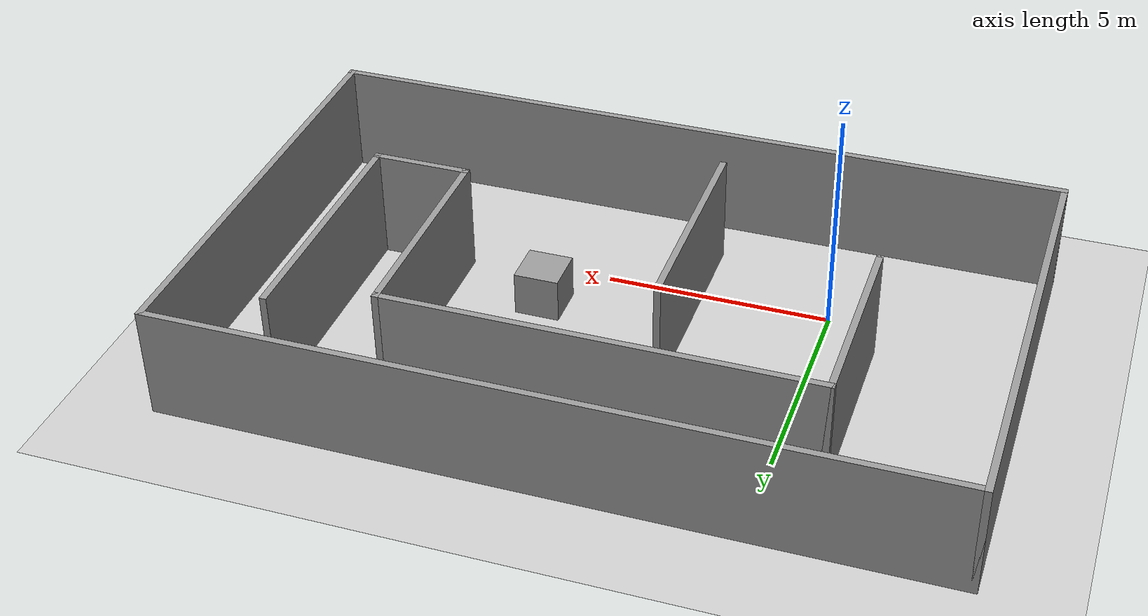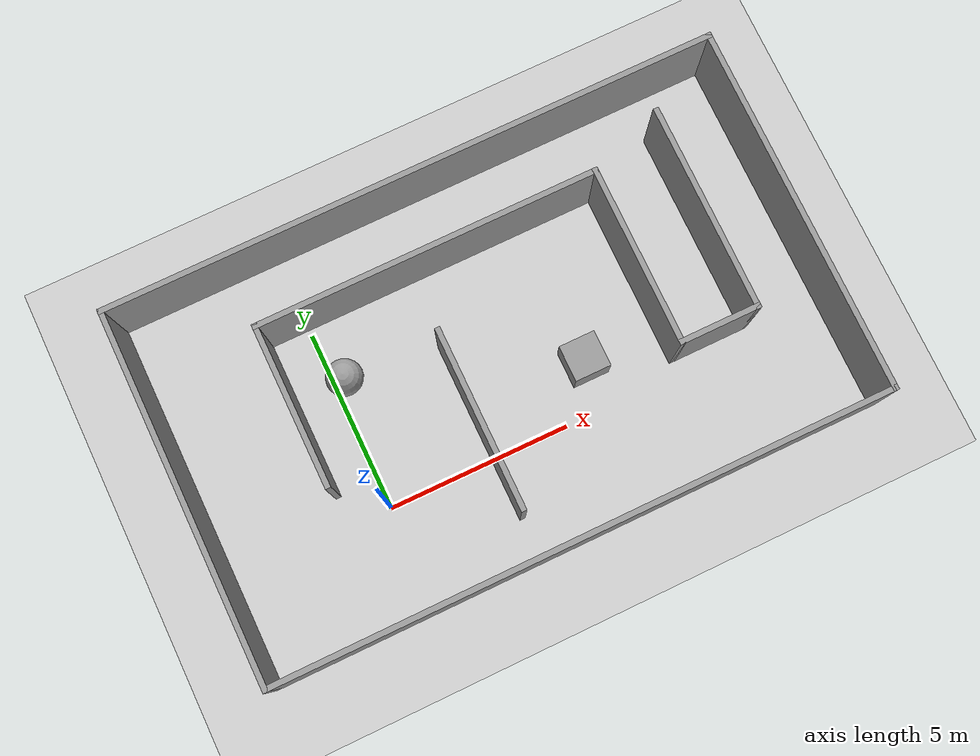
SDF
<sdf version="1.7">
 <world name="default">
  <light name="sun" type="directional">
   <pose>0 0 10 0 -0 0</pose>
   <diffuse>0.8 0.8 0.8 1</diffuse>
   <specular>0.2 0.2 0.2 1</specular>
   <attenuation>
    <range>1000</range>
    <constant>0.9</constant>
    <linear>0.01</linear>
    <quadratic>0.001</quadratic>
   </attenuation>
   <direction>-0.5 0.1 -0.9</direction>
   <spot><inner_angle>0</inner_angle><outer_angle>0</outer_angle><falloff>0</falloff></spot>
  </light>
  <model name="ground_plane">
   <static>1</static>
   <link name="link">
    <collision name="collision">
     <geometry><plane><normal>0 0 1</normal><size>100 100</size></plane></geometry>
     <surface>
      <contact><collide_bitmask>65535</collide_bitmask></contact>
      <friction><ode><mu>100</mu><mu2>50</mu2></ode></friction>
     </surface>
    </collision>
    <visual name="visual">
     <cast_shadows>0</cast_shadows>
     <geometry><plane><normal>0 0 1</normal><size>100 100</size></plane></geometry>
     <material>
      <script><uri>file://media/materials/scripts/gazebo.material</uri><name>Gazebo/Grey</name></script>
     </material>
    </visual>
   </link>
  </model>
  <gravity>0 0 -9.8</gravity>
  <magnetic_field>6e-06 2.3e-05 -4.2e-05</magnetic_field>
  <atmosphere type="adiabatic"/>
  <physics type="ode">
   <max_step_size>0.001</max_step_size>
   <real_time_factor>1</real_time_factor>
   <real_time_update_rate>1000</real_time_update_rate>
  </physics>
  <scene><ambient>0.4 0.4 0.4 1</ambient><background>0.7 0.7 0.7 1</background><shadows>1</shadows></scene>
  <audio><device>default</device></audio>
  <spherical_coordinates>
   <surface_model>EARTH_WGS84</surface_model>
   <latitude_deg>0</latitude_deg>
   <longitude_deg>0</longitude_deg>
   <elevation>0</elevation>
   <heading_deg>0</heading_deg>
  </spherical_coordinates>
  <model name="Untitled">
   <pose>4.005 2.19 0 0 -0 0</pose>
   <link name="Wall_0">
    <collision name="Wall_0_Collision">
     <geometry><box><size>10.25 0.15 2.5</size></box></geometry>
     <pose>0 0 1.25 0 -0 0</pose>
    </collision>
    <visual name="Wall_0_Visual">
     <pose>0 0 1.25 0 -0 0</pose>
     <geometry><box><size>10.25 0.15 2.5</size></box></geometry>
     <material>
      <script><uri>file://media/materials/scripts/gazebo.material</uri><name>Gazebo/Grey</name></script>
      <ambient>1 1 1 1</ambient>
     </material>
     <meta><layer>0</layer></meta>
    </visual>
    <pose>-8.425 0 0 0 -0 1.5708</pose>
   </link>
   <link name="Wall_1">
    <collision name="Wall_1_Collision">
     <geometry><box><size>17 0.15 2.5</size></box></geometry>
     <pose>0 0 1.25 0 -0 0</pose>
    </collision>
    <visual name="Wall_1_Visual">
     <pose>0 0 1.25 0 -0 0</pose>
     <geometry><box><size>17 0.15 2.5</size></box></geometry>
     <material>
      <script><uri>file://media/materials/scripts/gazebo.material</uri><name>Gazebo/Grey</name></script>
      <ambient>1 1 1 1</ambient>
     </material>
     <meta><layer>0</layer></meta>
    </visual>
    <pose>0 5.05 0 0 -0 0</pose>
   </link>
   <link name="Wall_10">
    <collision name="Wall_10_Collision">
     <geometry><box><size>5.75 0.15 2.5</size></box></geometry>
     <pose>0 0 1.25 0 -0 0</pose>
    </collision>
    <visual name="Wall_10_Visual">
     <pose>0 0 1.25 0 -0 0</pose>
     <geometry><box><size>5.75 0.15 2.5</size></box></geometry>
     <material>
      <script><uri>file://media/materials/scripts/gazebo.material</uri><name>Gazebo/Grey</name></script>
      <ambient>1 1 1 1</ambient>
     </material>
     <meta><layer>0</layer></meta>
    </visual>
    <pose>6.32232 1.01318 0 0 -0 1.5708</pose>
   </link>
   <link name="Wall_12">
    <collision name="Wall_12_Collision">
     <geometry><box><size>5 0.15 2.5</size></box></geometry>
     <pose>0 0 1.25 0 -0 0</pose>
    </collision>
    <visual name="Wall_12_Visual">
     <pose>0 0 1.25 0 -0 0</pose>
     <geometry><box><size>5 0.15 2.5</size></box></geometry>
     <material>
      <script><uri>file://media/materials/scripts/gazebo.material</uri><name>Gazebo/Grey</name></script>
      <ambient>1 1 1 1</ambient>
     </material>
     <meta><layer>0</layer></meta>
    </visual>
    <pose>-1.08212 -1.3846 0 0 -0 -1.5708</pose>
   </link>
   <link name="Wall_2">
    <collision name="Wall_2_Collision">
     <geometry><box><size>10.25 0.15 2.5</size></box></geometry>
     <pose>0 0 1.25 0 -0 0</pose>
    </collision>
    <visual name="Wall_2_Visual">
     <pose>0 0 1.25 0 -0 0</pose>
     <geometry><box><size>10.25 0.15 2.5</size></box></geometry>
     <material>
      <script><uri>file://media/materials/scripts/gazebo.material</uri><name>Gazebo/Grey</name></script>
      <ambient>1 1 1 1</ambient>
     </material>
     <meta><layer>0</layer></meta>
    </visual>
    <pose>8.425 0 0 0 -0 -1.5708</pose>
   </link>
   <link name="Wall_3">
    <collision name="Wall_3_Collision">
     <geometry><box><size>17 0.15 2.5</size></box></geometry>
     <pose>0 0 1.25 0 -0 0</pose>
    </collision>
    <visual name="Wall_3_Visual">
     <pose>0 0 1.25 0 -0 0</pose>
     <geometry><box><size>17 0.15 2.5</size></box></geometry>
     <material>
      <script><uri>file://media/materials/scripts/gazebo.material</uri><name>Gazebo/Grey</name></script>
      <ambient>1 1 1 1</ambient>
     </material>
     <meta><layer>0</layer></meta>
    </visual>
    <pose>0 -5.05 0 0 -0 3.14159</pose>
   </link>
   <link name="Wall_5">
    <collision name="Wall_5_Collision">
     <geometry><box><size>4.5 0.15 2.5</size></box></geometry>
     <pose>0 0 1.25 0 -0 0</pose>
    </collision>
    <visual name="Wall_5_Visual">
     <pose>0 0 1.25 0 -0 0</pose>
     <geometry><box><size>4.5 0.15 2.5</size></box></geometry>
     <material>
      <script><uri>file://media/materials/scripts/gazebo.material</uri><name>Gazebo/Grey</name></script>
      <ambient>1 1 1 1</ambient>
     </material>
     <meta><layer>0</layer></meta>
    </visual>
    <pose>-5.12768 0.88818 0 0 -0 -1.5708</pose>
   </link>
   <link name="Wall_7">
    <collision name="Wall_7_Collision">
     <geometry><box><size>9.5 0.15 2.5</size></box></geometry>
     <pose>0 0 1.25 0 -0 0</pose>
    </collision>
    <visual name="Wall_7_Visual">
     <pose>0 0 1.25 0 -0 0</pose>
     <geometry><box><size>9.5 0.15 2.5</size></box></geometry>
     <material>
      <script><uri>file://media/materials/scripts/gazebo.material</uri><name>Gazebo/Grey</name></script>
      <ambient>1 1 1 1</ambient>
     </material>
     <meta><layer>0</layer></meta>
    </visual>
    <pose>-0.452676 3.06318 0 0 -0 0</pose>
   </link>
   <link name="Wall_8">
    <collision name="Wall_8_Collision">
     <geometry><box><size>5 0.15 2.5</size></box></geometry>
     <pose>0 0 1.25 0 -0 0</pose>
    </collision>
    <visual name="Wall_8_Visual">
     <pose>0 0 1.25 0 -0 0</pose>
     <geometry><box><size>5 0.15 2.5</size></box></geometry>
     <material>
      <script><uri>file://media/materials/scripts/gazebo.material</uri><name>Gazebo/Grey</name></script>
      <ambient>1 1 1 1</ambient>
     </material>
     <meta><layer>0</layer></meta>
    </visual>
    <pose>4.22232 0.63818 0 0 -0 -1.5708</pose>
   </link>
   <link name="Wall_9">
    <collision name="Wall_9_Collision">
     <geometry><box><size>2.25 0.15 2.5</size></box></geometry>
     <pose>0 0 1.25 0 -0 0</pose>
    </collision>
    <visual name="Wall_9_Visual">
     <pose>0 0 1.25 0 -0 0</pose>
     <geometry><box><size>2.25 0.15 2.5</size></box></geometry>
     <material>
      <script><uri>file://media/materials/scripts/gazebo.material</uri><name>Gazebo/Grey</name></script>
      <ambient>1 1 1 1</ambient>
     </material>
     <meta><layer>0</layer></meta>
    </visual>
    <pose>5.27232 -1.78682 0 0 -0 0</pose>
   </link>
   <static>1</static>
  </model>
  <model name="unit_sphere">
   <pose>0.314161 3.54285 0.5 0 -0 0</pose>
   <link name="link">
    <inertial>
     <mass>1</mass>
     <inertia><ixx>0.1</ixx><ixy>0</ixy><ixz>0</ixz><iyy>0.1</iyy><iyz>0</iyz><izz>0.1</izz></inertia>
    </inertial>
    <collision name="collision"><geometry><sphere><radius>0.5</radius></sphere></geometry></collision>
    <visual name="visual">
     <geometry><sphere><radius>0.5</radius></sphere></geometry>
     <material>
      <script><name>Gazebo/Grey</name><uri>file://media/materials/scripts/gazebo.material</uri></script>
     </material>
    </visual>
   </link>
  </model>
  <model name="unit_box">
   <pose>6.11346 1.31821 0.5 0 -0 0</pose>
   <link name="link">
    <inertial>
     <mass>1</mass>
     <inertia>
      <ixx>0.166667</ixx>
      <ixy>0</ixy>
      <ixz>0</ixz>
      <iyy>0.166667</iyy>
      <iyz>0</iyz>
      <izz>0.166667</izz>
     </inertia>
    </inertial>
    <collision name="collision"><geometry><box><size>1 1 1</size></box></geometry></collision>
    <visual name="visual">
     <geometry><box><size>1 1 1</size></box></geometry>
     <material>
      <script><name>Gazebo/Grey</name><uri>file://media/materials/scripts/gazebo.material</uri></script>
     </material>
    </visual>
   </link>
  </model>
 </world>
</sdf>
